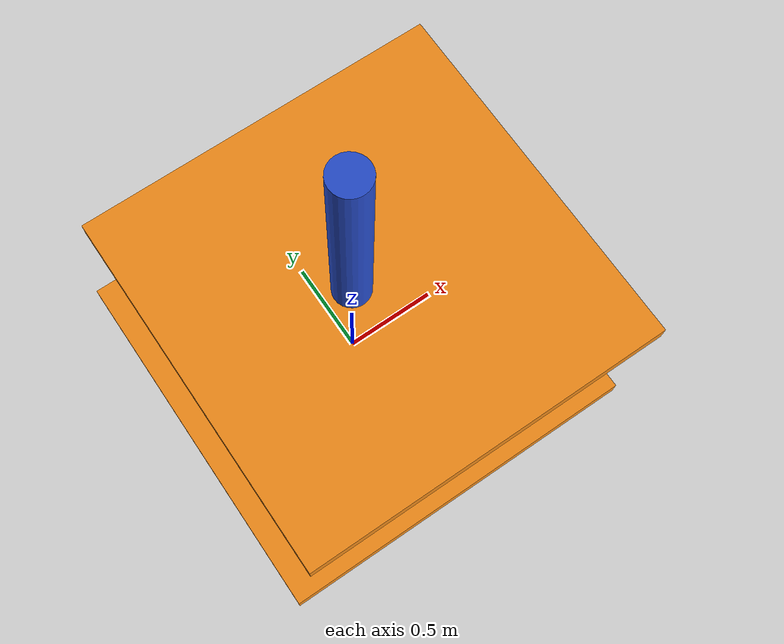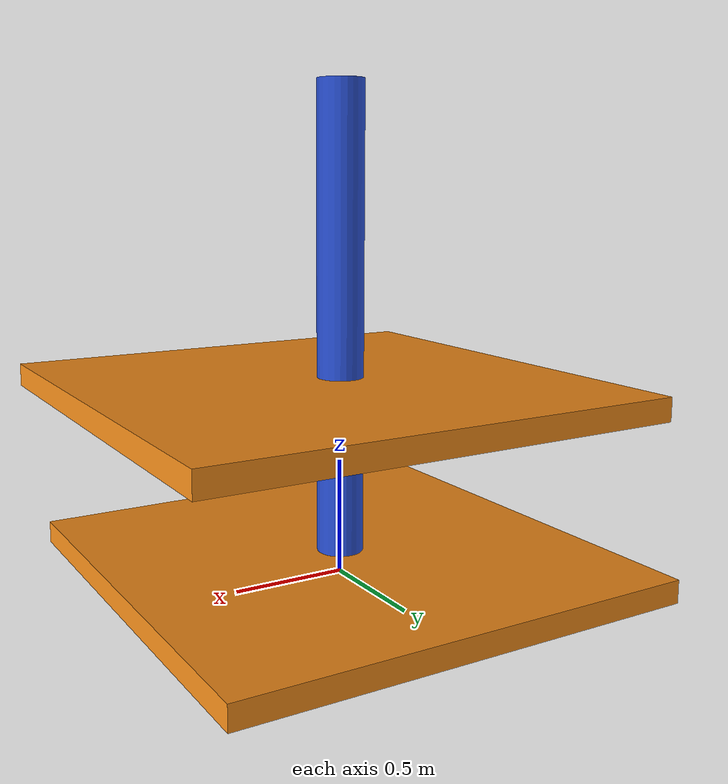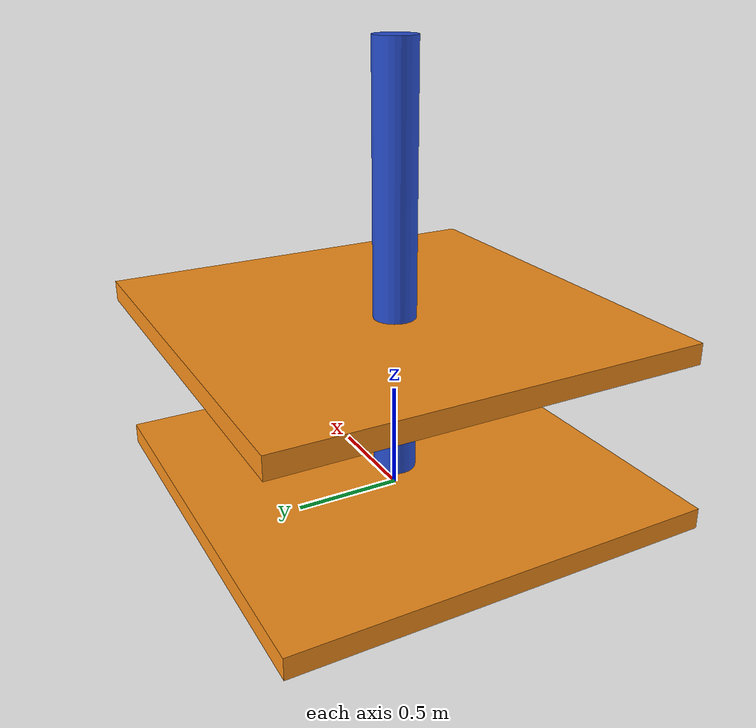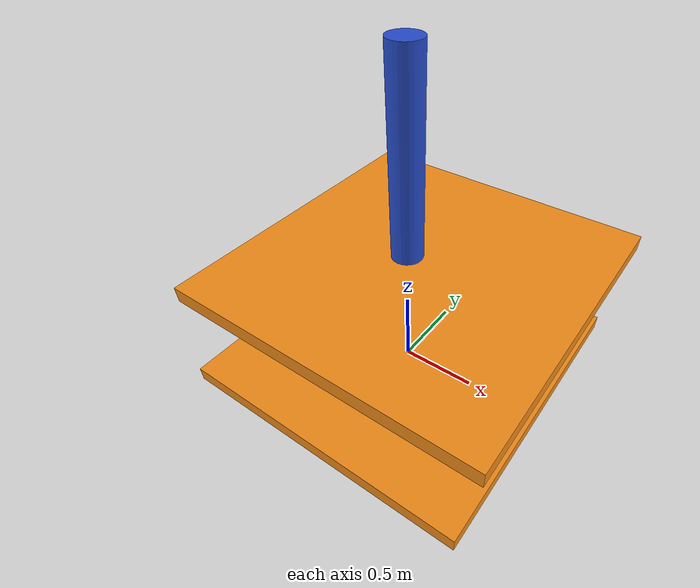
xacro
<?xml version="1.0"?>
<!-- Revolute-Revolute Manipulator -->
<robot name="vawt_1" xmlns:xacro="http://www.ros.org/wiki/xacro">

  <!-- Constants for robot dimensions -->
  <xacro:property name="PI" value="3.1415926535897931"/>
  <xacro:property name="mass" value="1" /> <!-- arbitrary value for mass -->

  <xacro:property name="height2" value="1" /> <!-- Link 2 -->
  <xacro:property name="height3" value="1" /> <!-- Link 3 -->
  <xacro:property name="camera_link" value="0.05" /> <!-- Size of square 'camera' box -->
  <xacro:property name="axel_offset" value="0.05" /> <!-- Space btw top of beam and the each joint -->

  <!-- Import all Gazebo-customization elements, including Gazebo colors -->
  <xacro:include filename="$(find vawt_1)/urdf/vawt_1.gazebo" />
  <!-- Import Rviz colors -->
  <xacro:include filename="$(find vawt_1)/urdf/materials.xacro" />

  <!-- Used for fixing robot to Gazebo 'base_link' -->
  <link name="world"/>

  <joint name="fixed" type="fixed">
    <parent link="world"/>
    <child link="base"/>
  </joint>

  <!-- Base Link -->
  <xacro:property name="base_width" value="2" />
  <xacro:property name="base_height" value="2" />
  <xacro:property name="base_depth" value="0.1" />

  <link name="base">
    <collision>
      <origin xyz="0 0 ${base_depth/2}" rpy="0 0 0"/>
      <geometry>
	    <box size="${base_width} ${base_height} ${base_depth}"/>
      </geometry>
    </collision>

    <visual>
      <origin xyz="0 0 ${base_depth/2}" rpy="0 0 0"/>
      <geometry>
	    <box size="${base_width} ${base_height} ${base_depth}"/>
      </geometry>
      <material name="orange"/>
    </visual>

    <inertial>
      <origin xyz="0 0 ${base_depth/2}" rpy="0 0 0"/>
      <mass value="${mass}"/>
      <inertia
        ixx="${mass / 12.0 * (base_height*base_height + base_depth*base_depth)}" ixy="0.0" ixz="0.0"
        iyy="${mass / 12.0 * (base_width*base_width + base_depth*base_depth)}" iyz="0.0"
        izz="${mass / 12.0 * (base_width*base_width + base_height*base_height)}"/>
      </inertial>
  </link>

  <joint name="main_shaft_joint" type="continuous">
    <parent link="base"/>
    <child link="main_shaft"/>
    <origin xyz="0 0 ${base_depth}"/>
    <axis xyz="0 0 1" />
    <dynamics damping="50" friction="1"/>
  </joint>

  <!-- main_shaft Link -->
  <xacro:property name="radius" value="0.1" />
  <xacro:property name="length" value="2" />

  <link name="main_shaft">
    <collision>
      <origin xyz="0 0 ${length/2}" rpy="0 0 0"/>
      <geometry>
	    <cylinder length="${length}" radius="${radius}"/>
      </geometry>
    </collision>

    <visual>
      <origin xyz="0 0 ${length/2}" rpy="0 0 0"/>
      <geometry>
	    <cylinder length="${length}" radius="${radius}"/>
      </geometry>
      <material name="blue"/>
    </visual>

    <inertial>
      <origin xyz="0 0 ${length/2}" rpy="0 0 0"/>
      <mass value="${mass}"/>
      <inertia
        ixx="${mass / 12.0 * (3*radius*radius + length*length)}" ixy="0.0" ixz="0.0"
        iyy="${mass / 12.0 * (3*radius*radius + length*length)}" iyz="0.0"
        izz="${mass / 2.0 * radius*radius}"/>
      </inertial>
  </link>

  <joint name="blade_1_bottom_strut_joint" type="fixed">
    <parent link="main_shaft"/>
    <child link="b1bs"/>
    <origin xyz="${radius} 0 ${length/3}"/>
  </joint>

  <!-- blade_1_bottom_strut Link -->
  <xacro:property name="width" value="2" />
  <xacro:property name="height" value="2" />
  <xacro:property name="depth" value="0.1" />

  <link name="b1bs">
    <collision>
      <origin xyz="0 0 ${depth/2}" rpy="0 0 0"/>
      <geometry>
	    <box size="${width} ${height} ${depth}"/>
      </geometry>
    </collision>

    <visual>
      <origin xyz="0 0 ${depth/2}" rpy="0 0 0"/>
      <geometry>
	    <box size="${width} ${height} ${depth}"/>
      </geometry>
      <material name="orange"/>
    </visual>

    <inertial>
      <origin xyz="0 0 ${depth/2}" rpy="0 0 0"/>
      <mass value="${mass}"/>
      <inertia
        ixx="${mass / 12.0 * (height*height + depth*depth)}" ixy="0.0" ixz="0.0"
        iyy="${mass / 12.0 * (width*width + depth*depth)}" iyz="0.0"
        izz="${mass / 12.0 * (width*width + height*height)}"/>
      </inertial>
  </link>

</robot>
